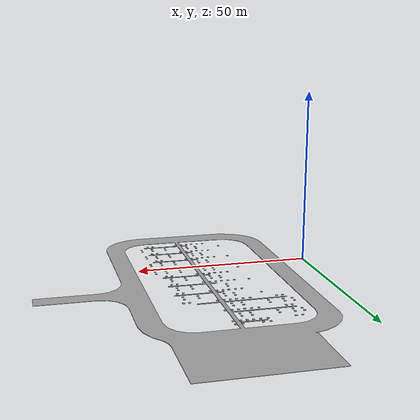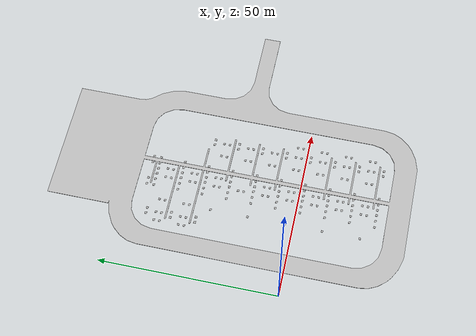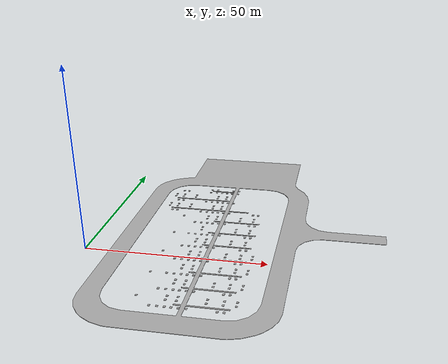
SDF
<?xml version="1.0"?>
<sdf version="1.7">
  <model name="station_base">
    <static>true</static>
    <allow_auto_disable>true</allow_auto_disable>

    <link name="link_0">
      <pose>-0.000001 0 0 0 0 0</pose>

      <inertial>
        <mass>1</mass>
        <inertia>
          <ixx>0.166667</ixx><ixy>0</ixy><ixz>0</ixz>
          <iyy>0.166667</iyy><iyz>0</iyz><izz>0.166667</izz>
        </inertia>
        <pose>0 0 0 0 0 0</pose>
      </inertial>

      <gravity>true</gravity>
      <self_collide>false</self_collide>
      <kinematic>false</kinematic>
      <enable_wind>false</enable_wind>

      <visual name="visual">
        <!-- Mantengo la rotación 90° (roll) si el STL necesita ponerse vertical -->
        <pose>0 0 0 1.57079 0 0</pose>
        <geometry>
          <mesh>
            <uri>meshes/station_base.stl</uri>
            <scale>1 1 1</scale>
          </mesh>
        </geometry>
        <material>
          <ambient>0.3 0.3 0.3 1</ambient>
          <diffuse>0.7 0.7 0.7 1</diffuse>
          <specular>0.01 0.01 0.01 1</specular>
          <emissive>0 0 0 1</emissive>
        </material>
        <cast_shadows>true</cast_shadows>
      </visual>

      <collision name="collision">
        <pose>0 0 0 1.57079 0 0</pose>
        <geometry>
          <mesh>
            <uri>meshes/station_base_10.stl</uri>
            <scale>1 1 1</scale>
          </mesh>
        </geometry>
        <max_contacts>10</max_contacts>
      </collision>
    </link>
  </model>
</sdf>
